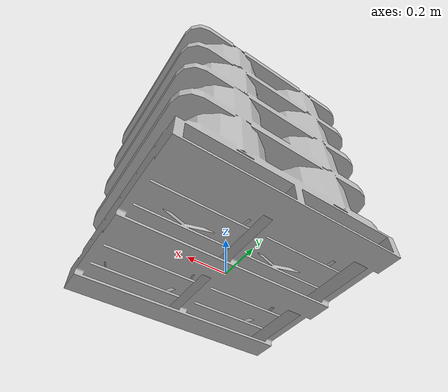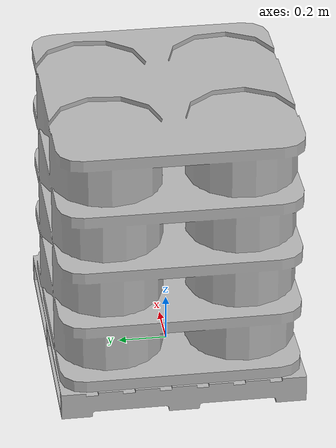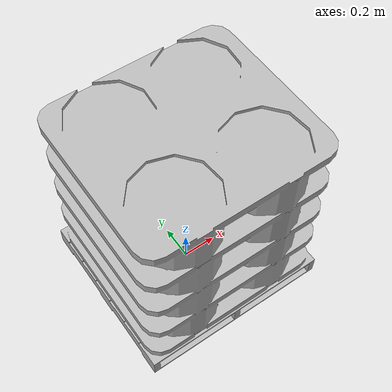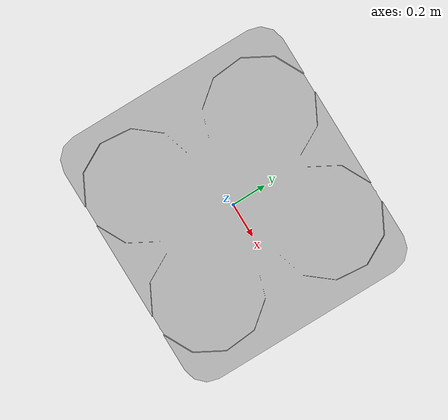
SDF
<?xml version="1.0" ?>
<sdf version="1.6">
  <model name="pallet_forged_wheels_newaxis">
    <static>true</static>
    <link name="link">
      <visual name="visual">
        <geometry>
          <mesh>
            <uri>model://pallet_forged_wheels_newaxis/meshes/pallet_forged_wheels_newaxis.obj</uri>
          </mesh>
        </geometry>
      </visual>
      <collision name="collision">
        <geometry>
          <mesh>
            <uri>model://pallet_forged_wheels_newaxis/meshes/pallet_forged_wheels_newaxis.obj</uri>
          </mesh>
        </geometry>
      </collision>
    </link>
  </model>
</sdf>
